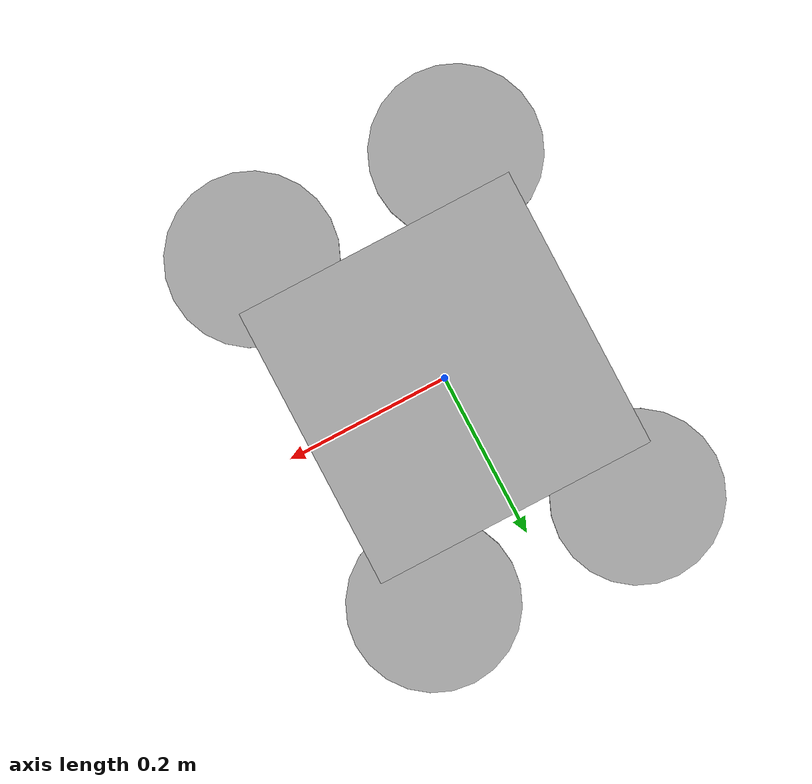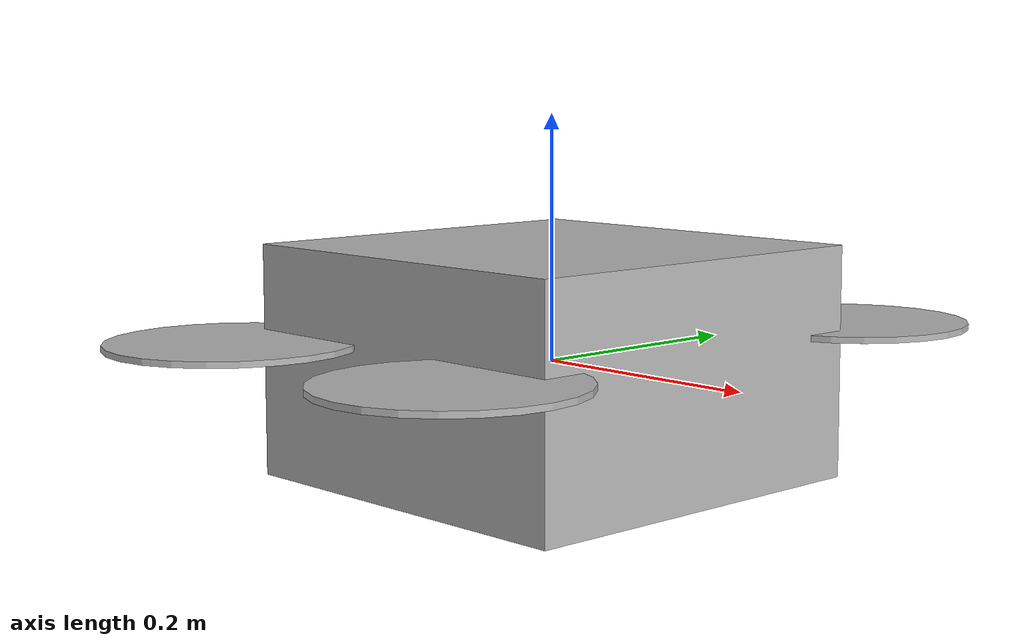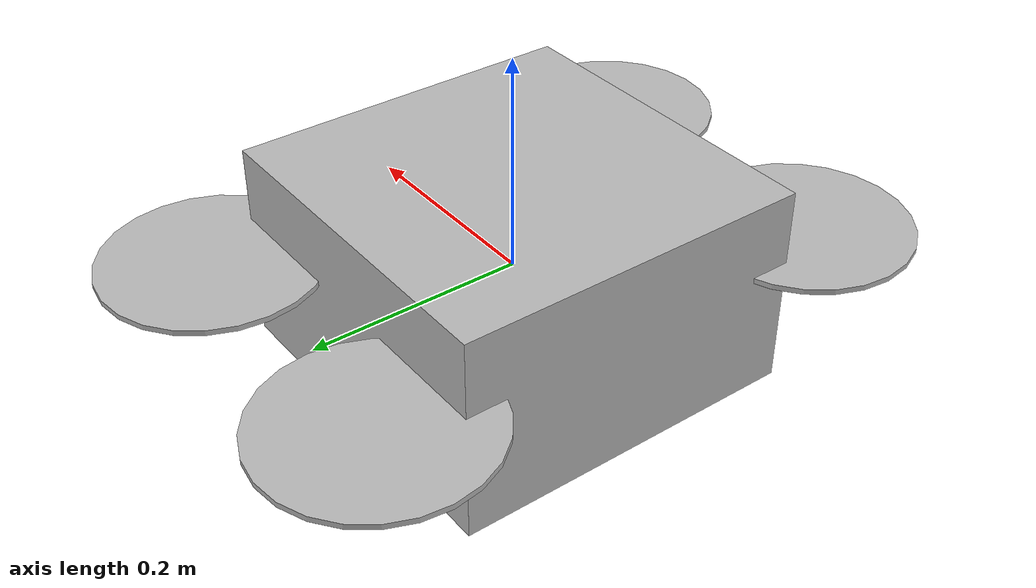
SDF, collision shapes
<sdf version='1.6'>
  <model name='x3'>
    <pose>0 0 0 0 0 0</pose>
    <link name='X3/base_link'>
  <pose frame=''>0 0 0 0 -0 0</pose>
  <inertial>
    <pose frame=''>0 0 0 0 -0 0</pose>
    <mass>1.5</mass>
    <inertia>
      <ixx>0.0347563</ixx>
      <ixy>0</ixy>
      <ixz>0</ixz>
      <iyy>0.07</iyy>
      <iyz>0</iyz>
      <izz>0.0977</izz>
    </inertia>
  </inertial>

  <velocity_decay>
    <linear>0.1</linear>
    <angular>0.5</angular>
  </velocity_decay>

      <collision name='X3/base_link_inertia_collision'>
        <pose frame=''>0 0 0 0 -0 0</pose>
        <geometry>
          <box>
              <size>0.33 0.33 0.19</size>
          </box>
        </geometry>
      </collision>
      <visual name='X3/base_link_inertia_visual'>
        <pose frame=''>0 0 0 0 -0 0</pose>
        <geometry>
          <mesh>
            <scale>0.7 0.7 0.6</scale>
  		      <uri>file:///home/ros-gazebo/anav_ws/src/martian_drone/worlds/models/x3/meshes/x3.dae</uri>

          </mesh>
        </geometry>
      </visual>
    </link>
    <link name='X3/rotor_0'>
      <pose frame=''>0.13 -0.22 0.023 0 -0 0</pose>
      <inertial>
        <pose frame=''>0 0 0 0 -0 0</pose>
        <mass>0.005</mass>
        <inertia>
          <ixx>9.75e-07</ixx>
          <ixy>0</ixy>
          <ixz>0</ixz>
          <iyy>4.17041e-05</iyy>
          <iyz>0</iyz>
          <izz>4.26041e-05</izz>
        </inertia>
      </inertial>
      <collision name='X3/rotor_0_collision'>
        <pose frame=''>0 0 0 0 -0 0</pose>
        <geometry>
          <cylinder>
            <length>0.005</length>
            <radius>0.1</radius>
          </cylinder>
        </geometry>
        <surface>
          <contact>
            <ode/>
          </contact>
          <friction>
            <ode/>
          </friction>
        </surface>
      </collision>
      <gravity>1</gravity>
      <velocity_decay/>
    </link>
    <joint name='X3/rotor_0_joint' type='revolute'>
      <child>X3/rotor_0</child>
      <parent>X3/base_link</parent>
      <axis>
        <xyz>0 0 1</xyz>
        <limit>
          <lower>-1e+16</lower>
          <upper>1e+16</upper>
        </limit>
        <dynamics>
          <spring_reference>0</spring_reference>
          <spring_stiffness>0</spring_stiffness>
        </dynamics>
        <use_parent_model_frame>1</use_parent_model_frame>
      </axis>
    </joint>
    <link name='X3/rotor_1'>
      <pose frame=''>-0.13  0.22 0.023 0 -0 0</pose>
      <inertial>
        <pose frame=''>0 0 0 0 -0 0</pose>
        <mass>0.005</mass>
        <inertia>
          <ixx>9.75e-07</ixx>
          <ixy>0</ixy>
          <ixz>0</ixz>
          <iyy>4.17041e-05</iyy>
          <iyz>0</iyz>
          <izz>4.26041e-05</izz>
        </inertia>
      </inertial>
      <collision name='X3/rotor_1_collision'>
        <pose frame=''>0 0 0 0 -0 0</pose>
        <geometry>
          <cylinder>
            <length>0.005</length>
            <radius>0.1</radius>
          </cylinder>
        </geometry>
        <surface>
          <contact>
            <ode/>
          </contact>
          <friction>
            <ode/>
          </friction>
        </surface>
      </collision>
      <gravity>1</gravity>
      <velocity_decay/>
    </link>
    <joint name='X3/rotor_1_joint' type='revolute'>
      <child>X3/rotor_1</child>
      <parent>X3/base_link</parent>
      <axis>
        <xyz>0 0 1</xyz>
        <limit>
          <lower>-1e+16</lower>
          <upper>1e+16</upper>
        </limit>
        <dynamics>
          <spring_reference>0</spring_reference>
          <spring_stiffness>0</spring_stiffness>
        </dynamics>
        <use_parent_model_frame>1</use_parent_model_frame>
      </axis>
    </joint>
    <link name='X3/rotor_2'>
      <pose frame=''>0.13  0.22 0.023 0 -0 0</pose>
      <inertial>
        <pose frame=''>0 0 0 0 -0 0</pose>
        <mass>0.005</mass>
        <inertia>
          <ixx>9.75e-07</ixx>
          <ixy>0</ixy>
          <ixz>0</ixz>
          <iyy>4.17041e-05</iyy>
          <iyz>0</iyz>
          <izz>4.26041e-05</izz>
        </inertia>
      </inertial>
      <collision name='X3/rotor_2_collision'>
        <pose frame=''>0 0 0 0 -0 0</pose>
        <geometry>
          <cylinder>
            <length>0.005</length>
            <radius>0.1</radius>
          </cylinder>
        </geometry>
        <surface>
          <contact>
            <ode/>
          </contact>
          <friction>
            <ode/>
          </friction>
        </surface>
      </collision>
      <gravity>1</gravity>
      <velocity_decay/>
    </link>
    <joint name='X3/rotor_2_joint' type='revolute'>
      <child>X3/rotor_2</child>
      <parent>X3/base_link</parent>
      <axis>
        <xyz>0 0 1</xyz>
        <limit>
          <lower>-1e+16</lower>
          <upper>1e+16</upper>
        </limit>
        <dynamics>
          <spring_reference>0</spring_reference>
          <spring_stiffness>0</spring_stiffness>
        </dynamics>
        <use_parent_model_frame>1</use_parent_model_frame>
      </axis>
    </joint>
    <link name='X3/rotor_3'>
      <pose frame=''>-0.13 -0.22 0.023 0 -0 0</pose>
      <inertial>
        <pose frame=''>0 0 0 0 -0 0</pose>
        <mass>0.005</mass>
        <inertia>
          <ixx>9.75e-07</ixx>
          <ixy>0</ixy>
          <ixz>0</ixz>
          <iyy>4.17041e-05</iyy>
          <iyz>0</iyz>
          <izz>4.26041e-05</izz>
        </inertia>
      </inertial>
      <collision name='X3/rotor_3_collision'>
        <pose frame=''>0 0 0 0 -0 0</pose>
        <geometry>
          <cylinder>
            <length>0.005</length>
            <radius>0.1</radius>
          </cylinder>
        </geometry>
        <surface>
          <contact>
            <ode/>
          </contact>
          <friction>
            <ode/>
          </friction>
        </surface>
      </collision>
      <gravity>1</gravity>
      <velocity_decay/>
    </link>
    <joint name='X3/rotor_3_joint' type='revolute'>
      <child>X3/rotor_3</child>
      <parent>X3/base_link</parent>
      <axis>
        <xyz>0 0 1</xyz>
        <limit>
          <lower>-1e+16</lower>
          <upper>1e+16</upper>
        </limit>
        <dynamics>
          <spring_reference>0</spring_reference>
          <spring_stiffness>0</spring_stiffness>
        </dynamics>
        <use_parent_model_frame>1</use_parent_model_frame>
      </axis>
    </joint>
  </model>
</sdf>
